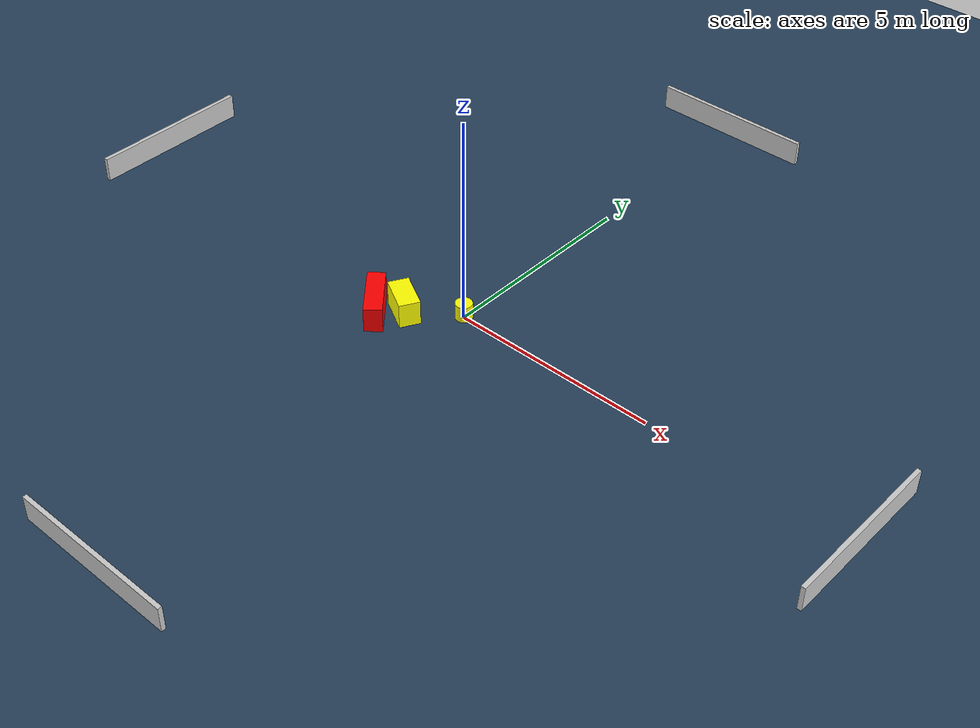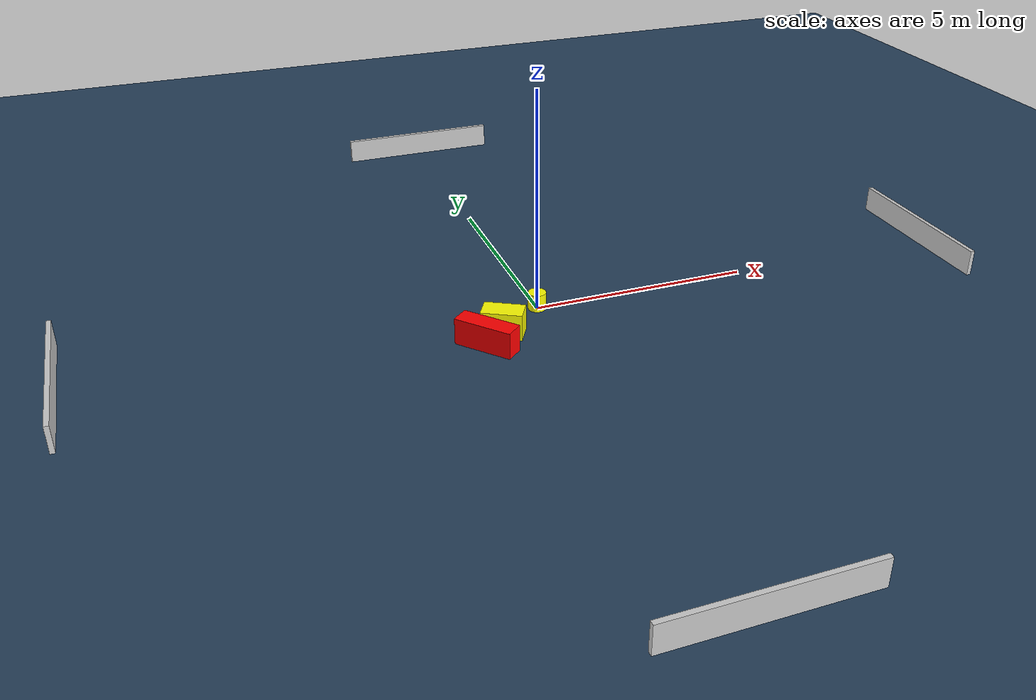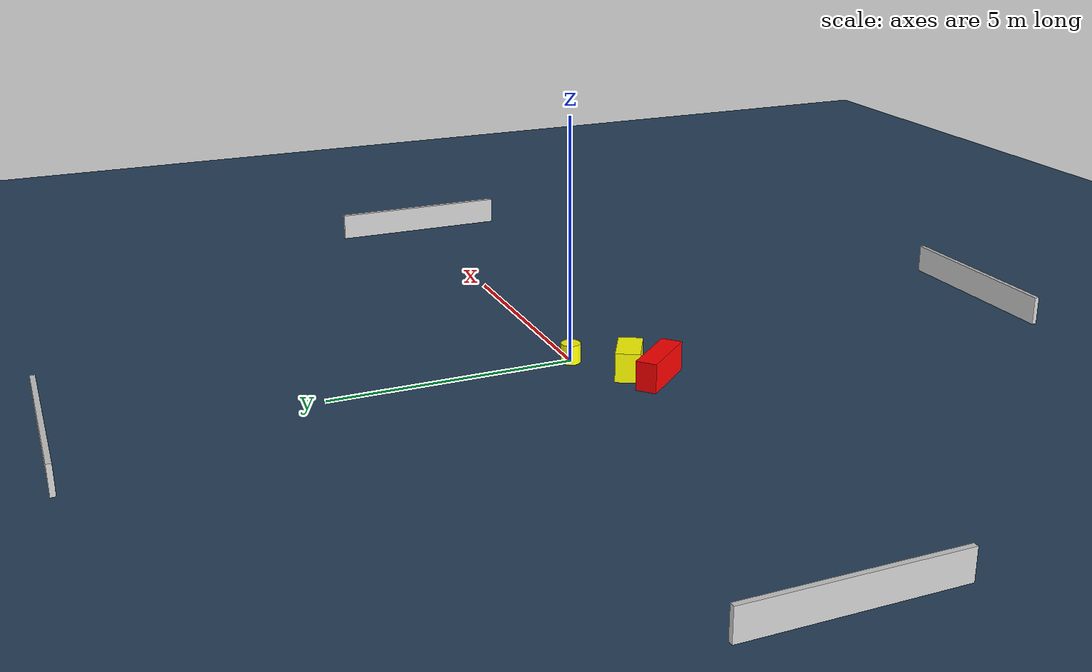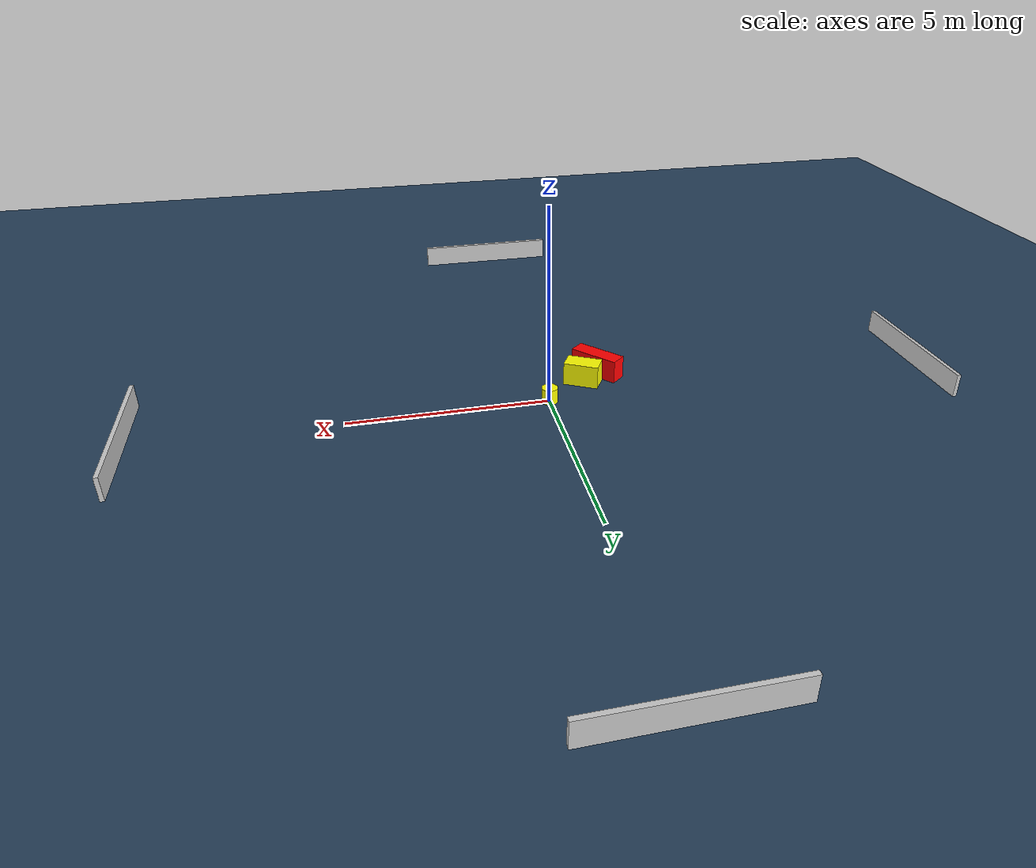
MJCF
<?xml version="1.0" ?>
<mujoco model="generated_environment">
  <option timestep="0.01" integrator="RK4" cone="elliptic"/>
  <default>
    <geom density="1"/>
  </default>
  <asset>
    <texture builtin="gradient" height="3072" name="skybox" rgb1="0.3 0.5 0.7" rgb2="0 0 0" type="skybox" width="512"/>
    <texture builtin="checker" height="300" name="groundplane" rgb1="0.2 0.3 0.4" rgb2="0.1 0.2 0.3" type="2d" width="300"/>
    <material name="groundplane" reflectance="0.2" texrepeat="5 5" texture="groundplane"/>
  </asset>
  <worldbody>
    <light dir="0 0 -1" directional="true" pos="0 0 1.5"/>
    <geom condim="3" friction="0.5 0.005 0.001" material="groundplane" name="floor" pos="0 0 0" size="0 0 0.05" type="plane"/>
    <body name="walls">
      <geom name="wall_1" condim="4" pos="-10.0 0.0 0.3" rgba="0.800000011920929 0.800000011920929 0.800000011920929 1.0" size="0.05 2.0 0.3" type="box"/>
      <geom name="wall_2" condim="4" pos="10.0 0.0 0.3" rgba="0.800000011920929 0.800000011920929 0.800000011920929 1.0" size="0.05 2.0 0.3" type="box"/>
      <geom name="wall_3" condim="4" pos="0.0 -10.0 0.3" rgba="0.800000011920929 0.800000011920929 0.800000011920929 1.0" size="2.0 0.05 0.3" type="box"/>
      <geom name="wall_4" condim="4" pos="0.0 10.0 0.3" rgba="0.800000011920929 0.800000011920929 0.800000011920929 1.0" size="2.0 0.05 0.3" type="box"/>
    </body>
    <body name="robot">
      <joint name="joint_x" type="slide" pos="0 0 0" axis="1 0 0"/>
      <joint name="joint_y" type="slide" pos="0 0 0" axis="0 1 0"/>
      <geom name="robot" type="cylinder" pos="0.0 0.0 0.2" size="0.2 0.2 0.0" mass="5.0" friction="1.0 0.005 0.0001" condim="4" rgba="1.0 1.0 0.0 1.0"/>
    </body>
    <body name="obstacle_1_movable">
      <geom name="obstacle_1_movable" condim="4" pos="-1.0542864350042032 -0.7882589451979154 0.3" euler="0 0 150.65964879062562" friction="0.0 0.005 0.001" rgba="1.0 1.0 0.0 1.0" size="0.4472364420783082 0.24602515523261376 0.3" type="box" mass="0.1"/>
      <joint type="free"/>
    </body>
    <body name="obstacle_2_static">
      <geom name="obstacle_2_static" condim="4" pos="-1.5467073296538494 -1.1957218776409941 0.3" euler="0 0 311.1615865126304" friction="0.0 0.005 0.001" rgba="1.0 0.0 0.0 1.0" size="0.6616269768898111 0.21071450141825732 0.3" type="box"/>
    </body>
  </worldbody>
  <actuator>
    <motor name="actuator_x" joint="joint_x" gear="1" ctrlrange="-1 1"/>
    <motor name="actuator_y" joint="joint_y" gear="1" ctrlrange="-1 1"/>
  </actuator>
</mujoco>
